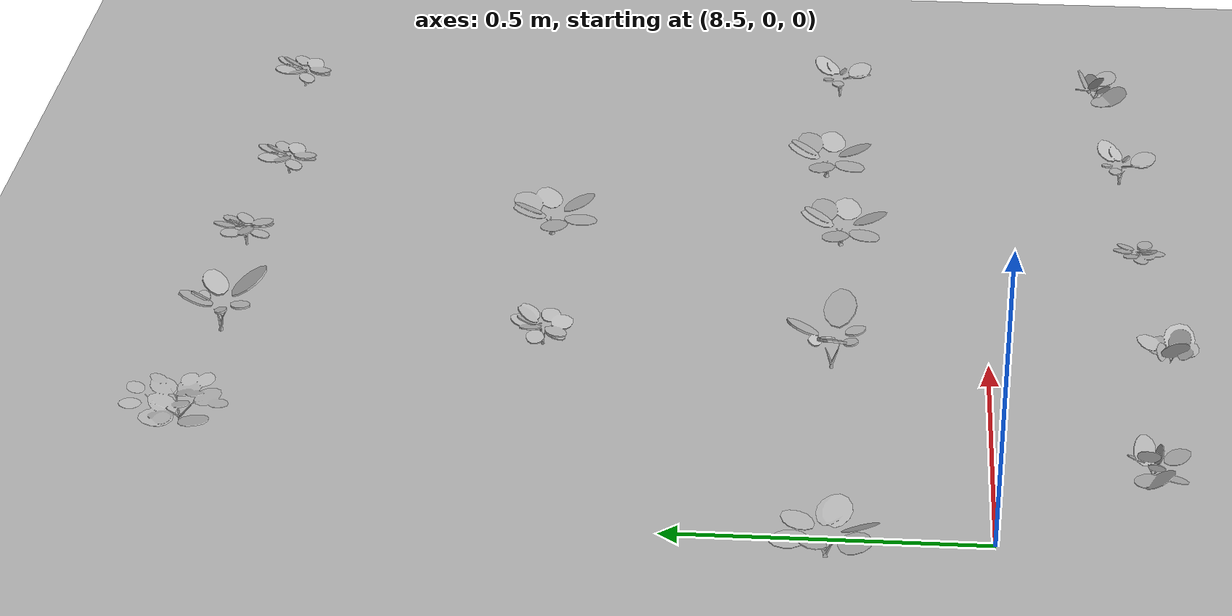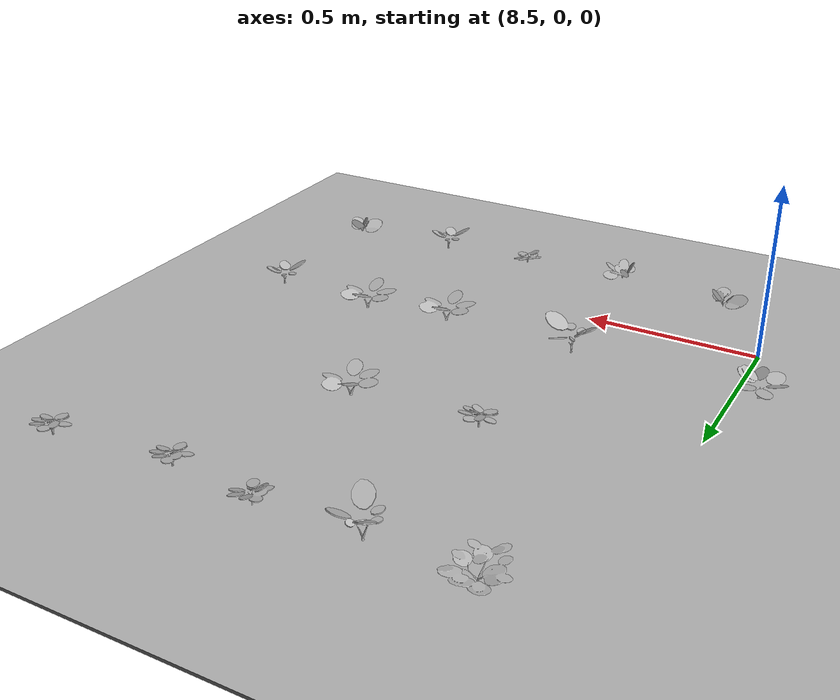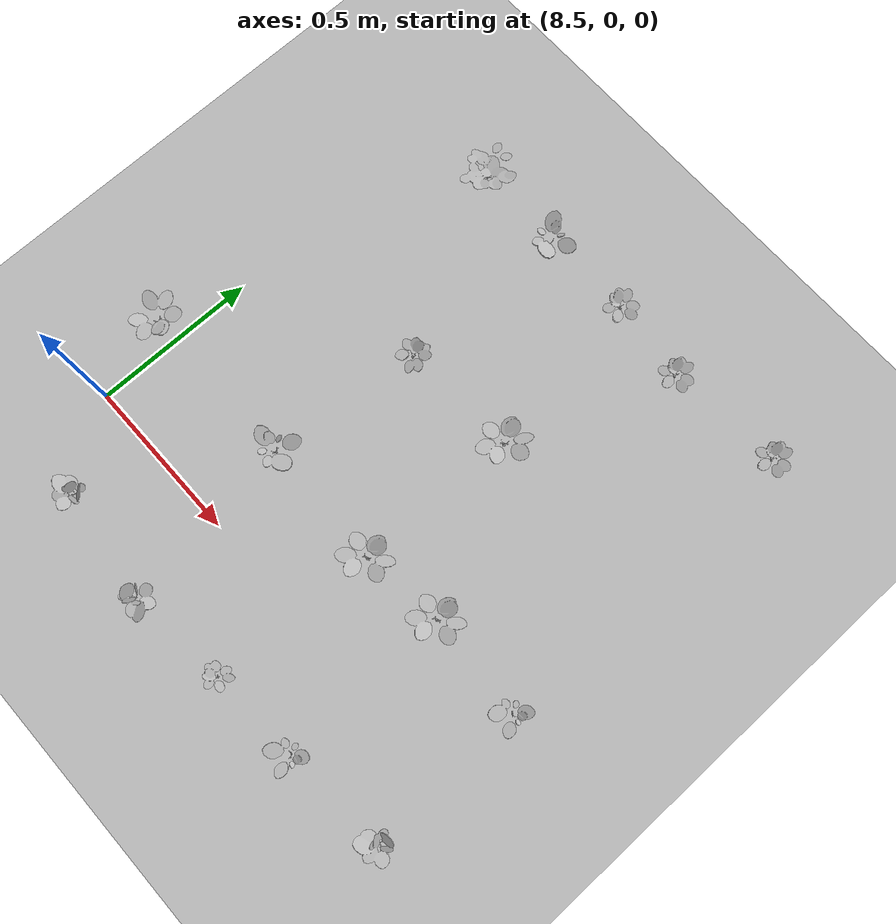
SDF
<sdf version="1.7">
 <world name="default">
  <model name="ground_plane">
   <static>1</static>
   <link name="link">
    <collision name="collision">
     <geometry><plane><normal>0 0 1</normal><size>100 100</size></plane></geometry>
     <surface>
      <contact><collide_bitmask>65535</collide_bitmask></contact>
      <friction><ode><mu>100</mu><mu2>50</mu2></ode></friction>
     </surface>
    </collision>
    <visual name="visual">
     <cast_shadows>0</cast_shadows>
     <geometry><plane><normal>0 0 1</normal><size>100 100</size></plane></geometry>
     <material>
      <ambient>0.2 0.2 0.2 1.0</ambient>
      <diffuse>0.2 0.2 0.2 1.0</diffuse>
      <specular>0.2 0.2 0.2 1.0</specular>
      <emissive>0.2 0.2 0.2 1.0</emissive>
     </material>
    </visual>
   </link>
  </model>
  <model name="ground">
   <pose>5 -0.5 0.01  3.141592654 0 0</pose>
   <static>true</static>
   <link name="body">
    <visual name="visual">
     <cast_shadows>0</cast_shadows>
     <geometry>
      <mesh><uri>file:///home/ifcosta/catkin_ws/src/cnn_line/worlds/models/ground.obj</uri></mesh>
     </geometry>
    </visual>
   </link>
  </model>
  <model name="plt_97">
   <pose>8.67 -0.24 0.0174 0.0 0.0 -1.1815</pose>
   <static>true</static>
   <link name="body">
    <visual name="visual">
     <geometry>
      <mesh><uri>file:///home/ifcosta/catkin_ws/src/cnn_line/worlds/models/plant7.obj</uri></mesh>
     </geometry>
    </visual>
   </link>
  </model>
  <model name="plt_98">
   <pose>9.01 -0.29 0.0137 0.0 0.0 1.414</pose>
   <static>true</static>
   <link name="body">
    <visual name="visual">
     <geometry>
      <mesh><uri>file:///home/ifcosta/catkin_ws/src/cnn_line/worlds/models/plant7.obj</uri></mesh>
     </geometry>
    </visual>
   </link>
  </model>
  <model name="plt_99">
   <pose>9.32 -0.258 0.0167 0.0 0.0 0.45921</pose>
   <static>true</static>
   <link name="body">
    <visual name="visual">
     <geometry>
      <mesh><uri>file:///home/ifcosta/catkin_ws/src/cnn_line/worlds/models/plant4.obj</uri></mesh>
     </geometry>
    </visual>
   </link>
  </model>
  <model name="plt_100">
   <pose>9.6 -0.242 0.0157 0.0 0.0 0.16163</pose>
   <static>true</static>
   <link name="body">
    <visual name="visual">
     <geometry>
      <mesh><uri>file:///home/ifcosta/catkin_ws/src/cnn_line/worlds/models/plant1.obj</uri></mesh>
     </geometry>
    </visual>
   </link>
  </model>
  <model name="plt_101">
   <pose>9.92 -0.216 0.016 0.0 0.0 -0.46842</pose>
   <static>true</static>
   <link name="body">
    <visual name="visual">
     <geometry>
      <mesh><uri>file:///home/ifcosta/catkin_ws/src/cnn_line/worlds/models/plant7.obj</uri></mesh>
     </geometry>
    </visual>
   </link>
  </model>
  <model name="plt_130">
   <pose>8.44 0.245 0.0182 0.0 0.0 -0.72301</pose>
   <static>true</static>
   <link name="body">
    <visual name="visual">
     <geometry>
      <mesh><uri>file:///home/ifcosta/catkin_ws/src/cnn_line/worlds/models/plant2.obj</uri></mesh>
     </geometry>
    </visual>
   </link>
  </model>
  <model name="plt_132">
   <pose>8.96 0.277 0.0173 0.0 0.0 -0.48439</pose>
   <static>true</static>
   <link name="body">
    <visual name="visual">
     <geometry>
      <mesh><uri>file:///home/ifcosta/catkin_ws/src/cnn_line/worlds/models/plant3.obj</uri></mesh>
     </geometry>
    </visual>
   </link>
  </model>
  <model name="plt_133">
   <pose>9.35 0.254 0.0179 0.0 0.0 1.213</pose>
   <static>true</static>
   <link name="body">
    <visual name="visual">
     <geometry>
      <mesh><uri>file:///home/ifcosta/catkin_ws/src/cnn_line/worlds/models/plant2.obj</uri></mesh>
     </geometry>
    </visual>
   </link>
  </model>
  <model name="plt_134">
   <pose>9.6 0.284 0.0144 0.0 0.0 1.2364</pose>
   <static>true</static>
   <link name="body">
    <visual name="visual">
     <geometry>
      <mesh><uri>file:///home/ifcosta/catkin_ws/src/cnn_line/worlds/models/plant2.obj</uri></mesh>
     </geometry>
    </visual>
   </link>
  </model>
  <model name="plt_135">
   <pose>9.91 0.258 0.0159 0.0 0.0 0.40791</pose>
   <static>true</static>
   <link name="body">
    <visual name="visual">
     <geometry>
      <mesh><uri>file:///home/ifcosta/catkin_ws/src/cnn_line/worlds/models/plant1.obj</uri></mesh>
     </geometry>
    </visual>
   </link>
  </model>
  <model name="plt_166">
   <pose>9.0 0.721 0.0137 0.0 0.0 -1.3624</pose>
   <static>true</static>
   <link name="body">
    <visual name="visual">
     <geometry>
      <mesh><uri>file:///home/ifcosta/catkin_ws/src/cnn_line/worlds/models/plant5.obj</uri></mesh>
     </geometry>
    </visual>
   </link>
  </model>
  <model name="plt_167">
   <pose>9.36 0.751 0.0137 0.0 0.0 1.5852</pose>
   <static>true</static>
   <link name="body">
    <visual name="visual">
     <geometry>
      <mesh><uri>file:///home/ifcosta/catkin_ws/src/cnn_line/worlds/models/plant2.obj</uri></mesh>
     </geometry>
    </visual>
   </link>
  </model>
  <model name="plt_199">
   <pose>8.73 1.26 0.0171 0.0 0.0 0.26787</pose>
   <static>true</static>
   <link name="body">
    <visual name="visual">
     <geometry>
      <mesh><uri>file:///home/ifcosta/catkin_ws/src/cnn_line/worlds/models/plant0.obj</uri></mesh>
     </geometry>
    </visual>
   </link>
  </model>
  <model name="plt_200">
   <pose>9.03 1.26 0.0139 0.0 0.0 -1.3479</pose>
   <static>true</static>
   <link name="body">
    <visual name="visual">
     <geometry>
      <mesh><uri>file:///home/ifcosta/catkin_ws/src/cnn_line/worlds/models/plant3.obj</uri></mesh>
     </geometry>
    </visual>
   </link>
  </model>
  <model name="plt_201">
   <pose>9.29 1.26 0.0139 0.0 0.0 -0.15825</pose>
   <static>true</static>
   <link name="body">
    <visual name="visual">
     <geometry>
      <mesh><uri>file:///home/ifcosta/catkin_ws/src/cnn_line/worlds/models/plant5.obj</uri></mesh>
     </geometry>
    </visual>
   </link>
  </model>
  <model name="plt_202">
   <pose>9.54 1.23 0.0184 0.0 0.0 -0.65128</pose>
   <static>true</static>
   <link name="body">
    <visual name="visual">
     <geometry>
      <mesh><uri>file:///home/ifcosta/catkin_ws/src/cnn_line/worlds/models/plant5.obj</uri></mesh>
     </geometry>
    </visual>
   </link>
  </model>
  <model name="plt_203">
   <pose>9.89 1.26 0.014 0.0 0.0 -0.80893</pose>
   <static>true</static>
   <link name="body">
    <visual name="visual">
     <geometry>
      <mesh><uri>file:///home/ifcosta/catkin_ws/src/cnn_line/worlds/models/plant5.obj</uri></mesh>
     </geometry>
    </visual>
   </link>
  </model>
 </world>
</sdf>
